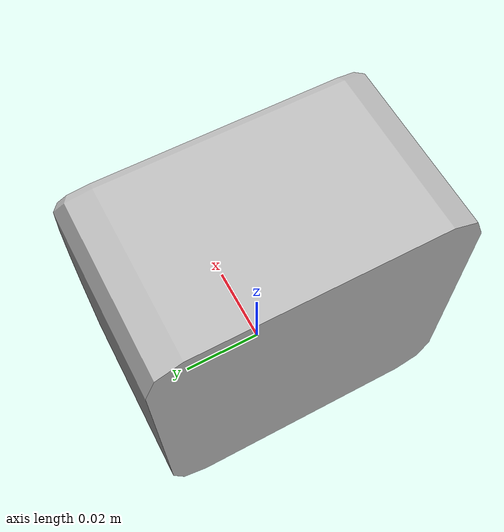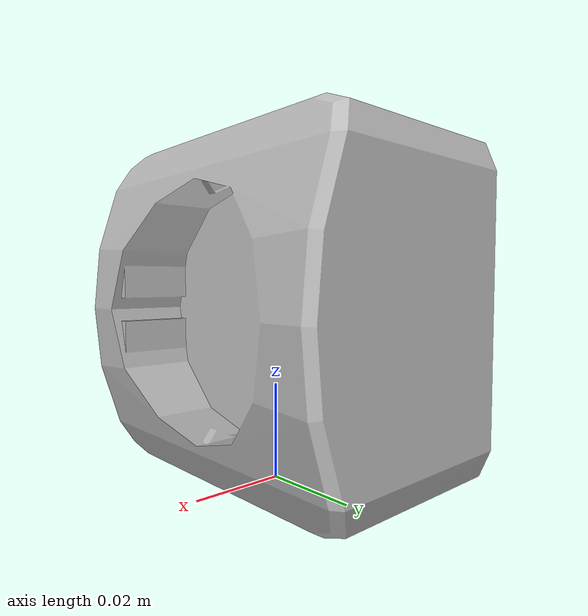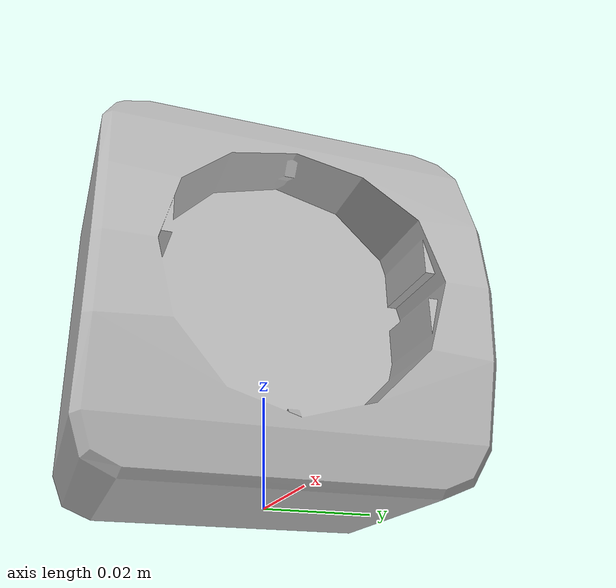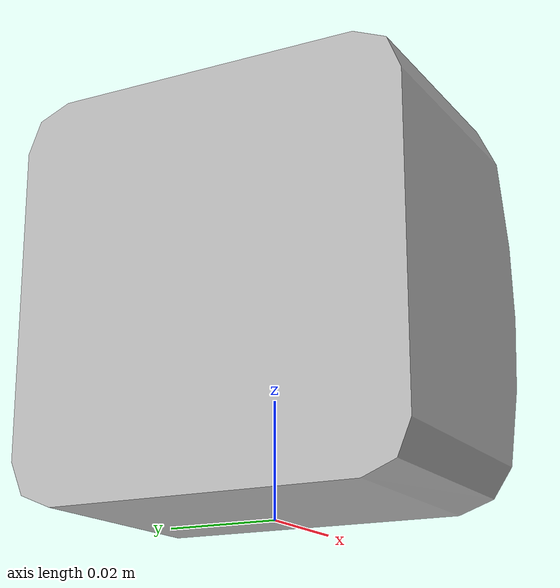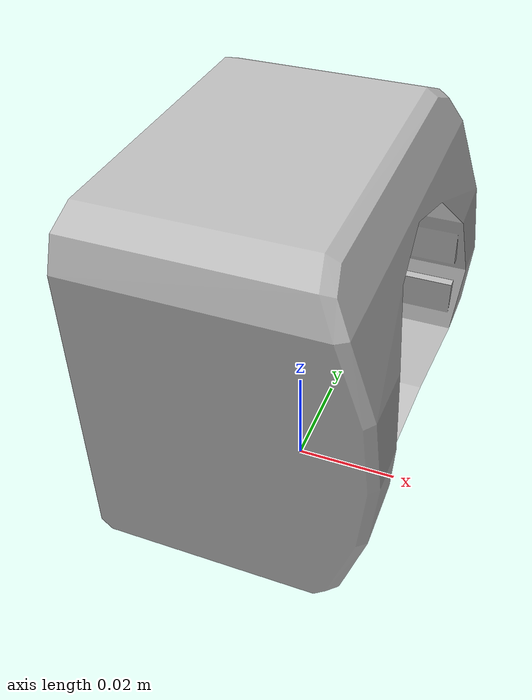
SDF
<?xml version='1.0'?>
<sdf version='1.4'>
  <model name='280'>
    <pose>0 0 0 0 0 0</pose>
    <static>true</static>
    <link name='link'>
      <collision name='collision'>
        <pose>0 0 0 0 0 0</pose>
        <geometry>
          <box>
            <size>0.0499976 0.07 0</size>
          </box>
        </geometry>
      </collision>
      <visual name='visual'>
        <pose>0 0 0 0 0 0</pose>
        <geometry>
          <mesh><uri>model://280/280.dae</uri></mesh>
        </geometry>
      </visual>
    </link>
  </model>
</sdf>
